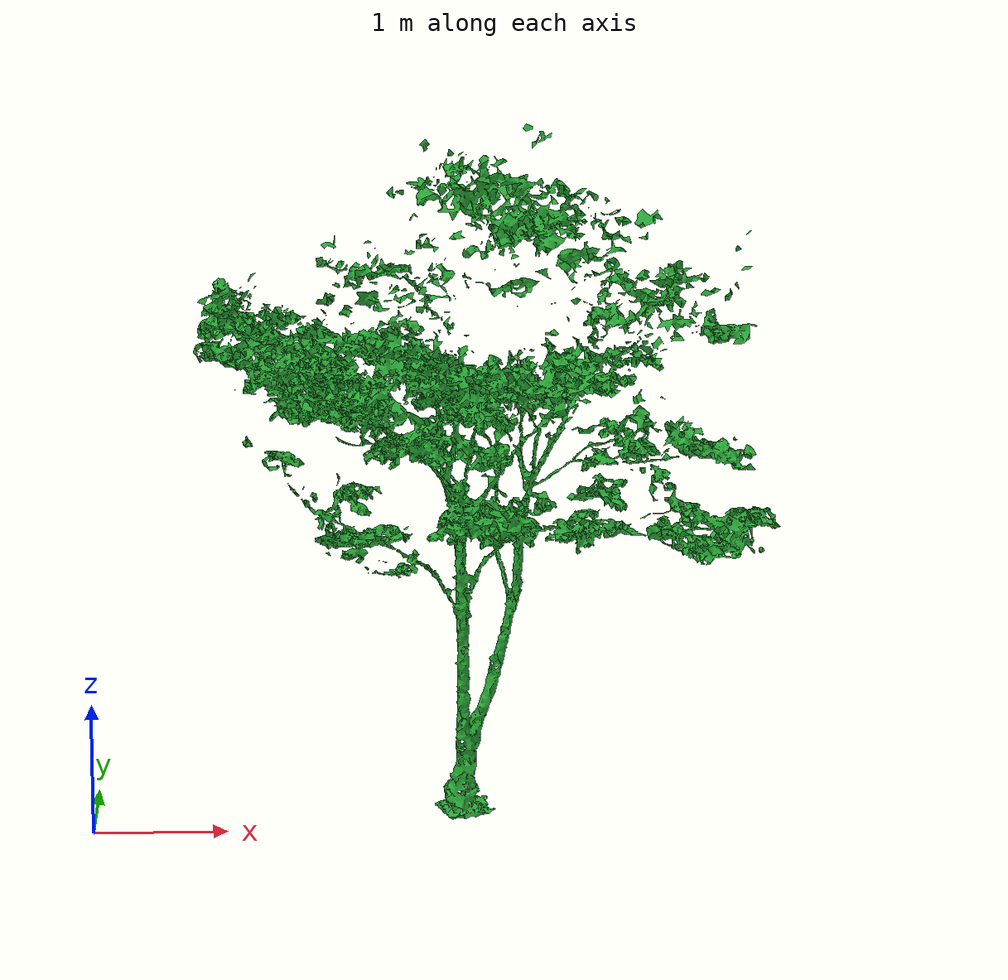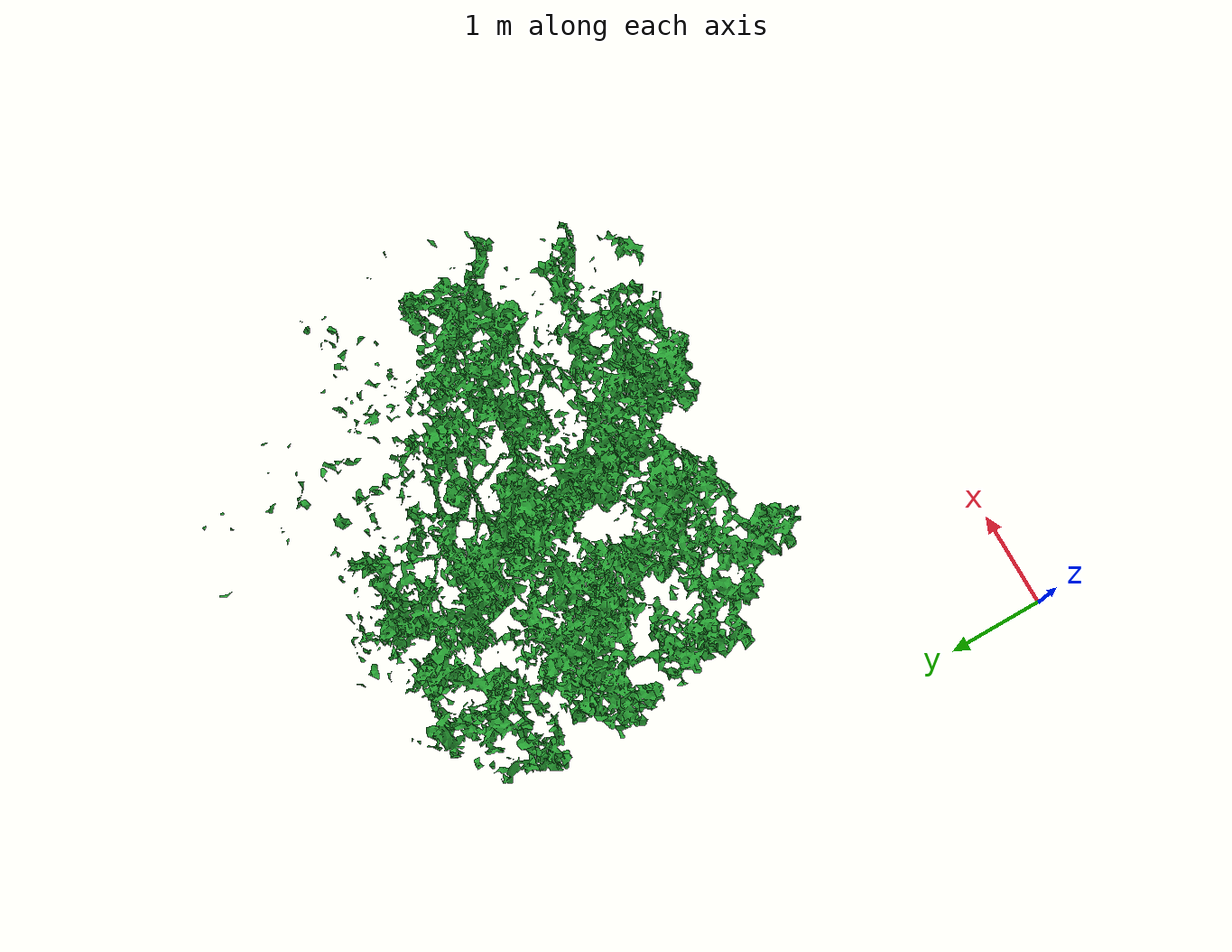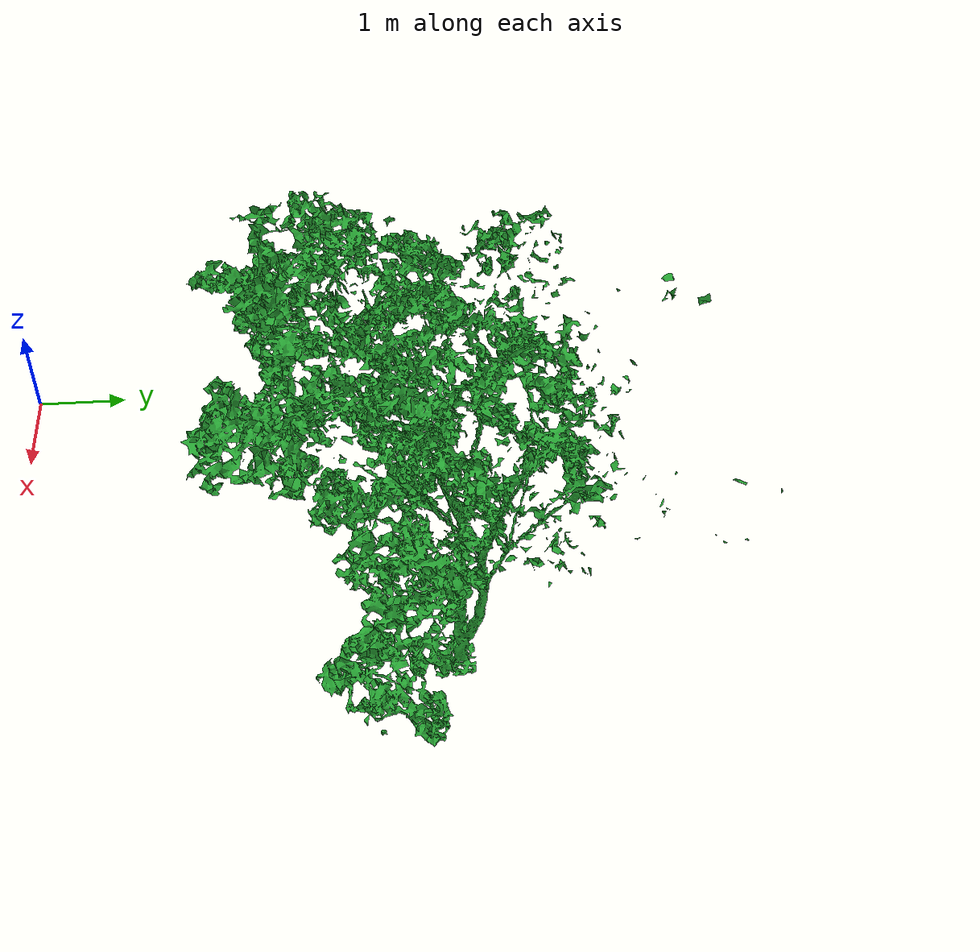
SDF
<?xml version="1.0" ?>
<sdf version="1.6">
  <model name="arvore_05">
    <!-- This makes the object static -->
    <static>true</static>
    <link name="link">
      <!-- Visual representation -->
      <visual name="visual">
      <laser_retro>7</laser_retro>
        <geometry>
          <mesh>
            <uri>model://arvore_05/meshes/arvore_05.stl</uri>
            <scale>9 9 9</scale>
          </mesh>
        </geometry>
        <material> <!-- Material/cor da mesh -->
          <script>
            <uri>file://media/materials/scripts/gazebo.material</uri>
            <name>Gazebo/Green</name>
          </script>
        </material>
      </visual>
      <!-- Optional collision representation -->
      <collision name="collision">
      <laser_retro>7</laser_retro>
        <geometry>
          <mesh>
            <uri>model://arvore_05/meshes/arvore_05.stl</uri>
            <scale>9 9 9</scale>
          </mesh>
        </geometry>
      </collision>
    </link>
  </model>
</sdf>
